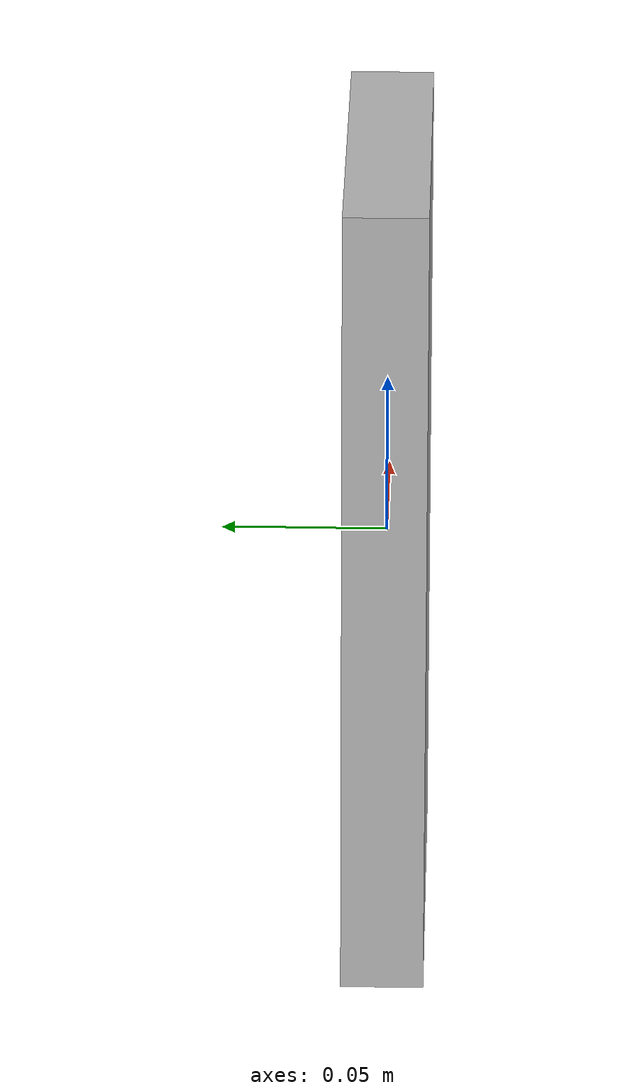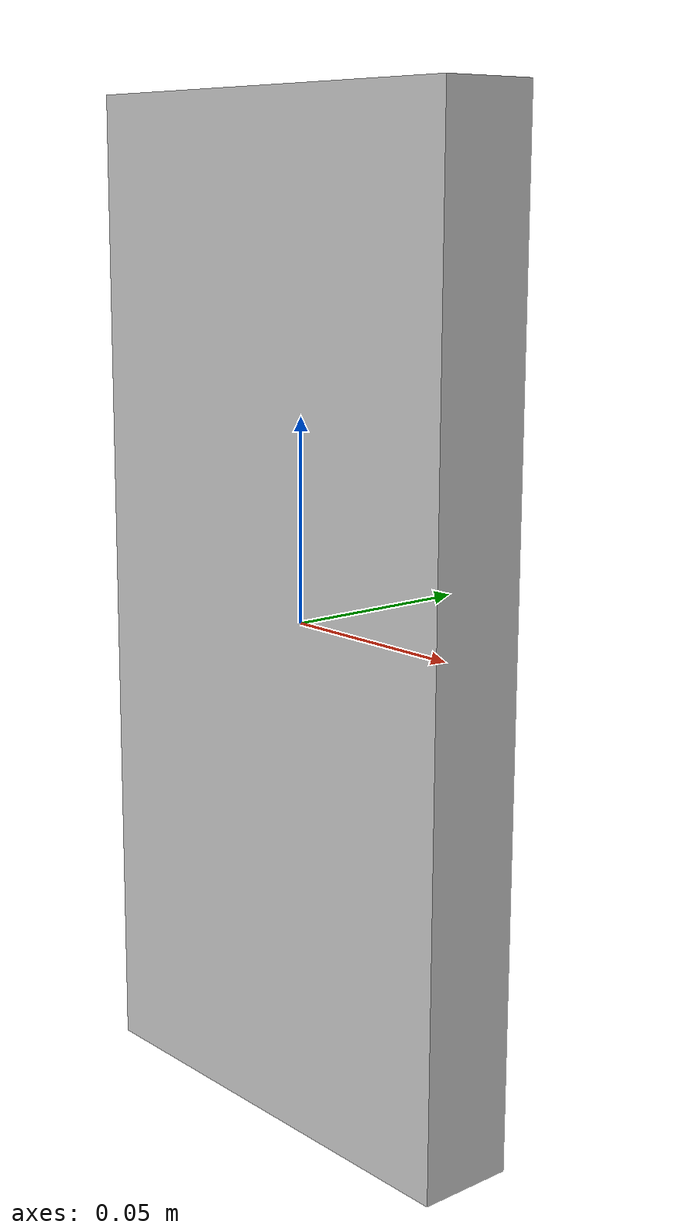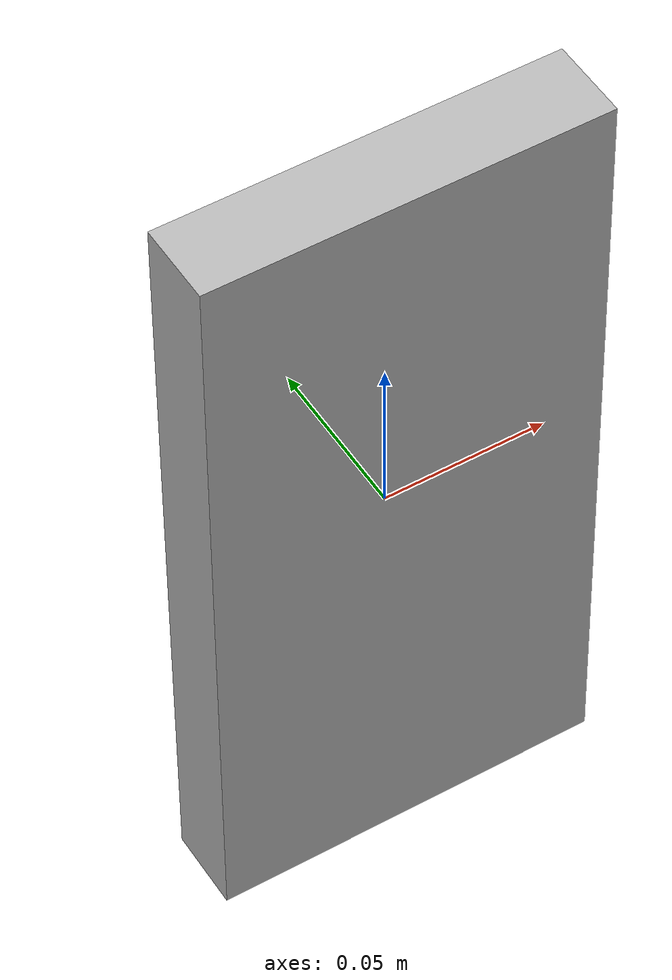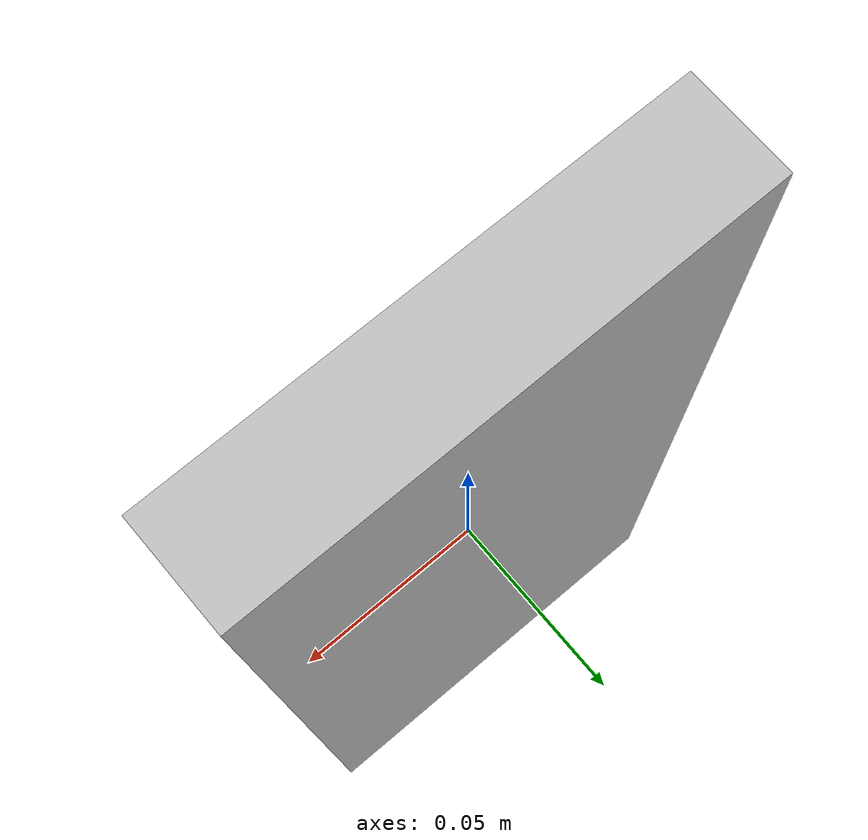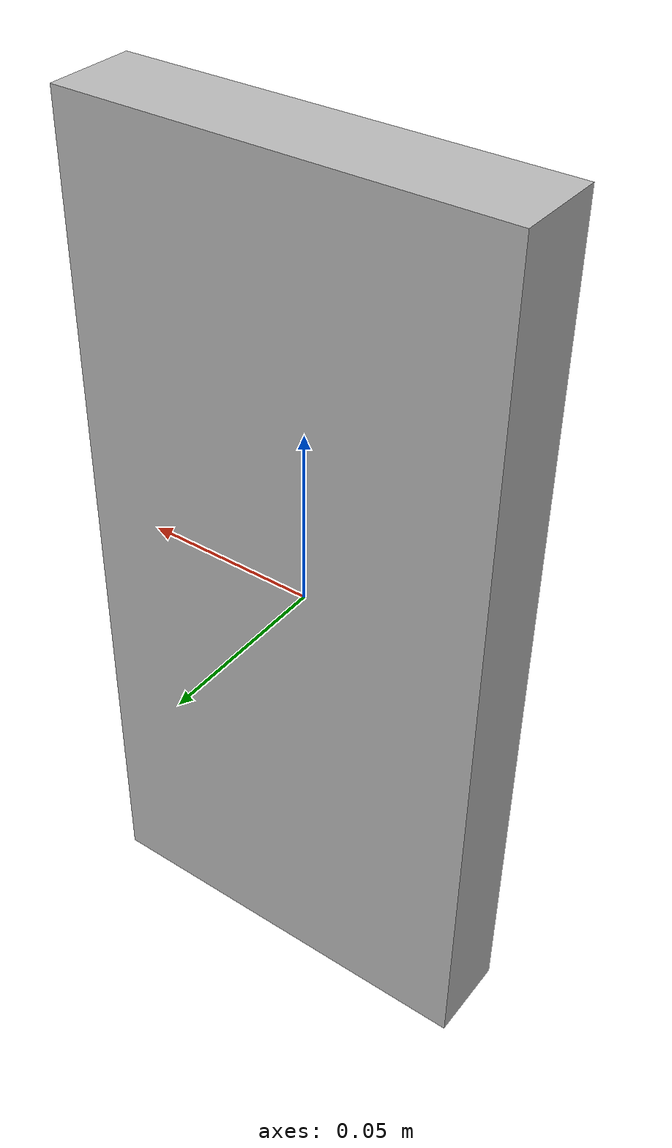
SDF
<?xml version="1.0" ?>
<sdf version="1.6">
  <model name="sign_stop">
    <static>true</static>
    <link name="box">
      <pose>0 0 0 0 0 0</pose>
      <collision name="collision">
        <geometry>
          <box>
            <size>0.12 0.025 0.25</size>
          </box>
        </geometry>
      </collision>
      <visual name="visual">
        <geometry>
          <box>
            <size>0.12 0.025 0.25</size>
          </box>
        </geometry>
        <material>
          <script>
            <uri>model://sign_stop/materials/scripts</uri>
            <uri>model://sign_stop/materials/textures</uri>
            <name>sign_stop</name>
          </script>
        </material>
      </visual>
    </link>
    <pose frame=''>0 -3e-06 -0 0 -0 0</pose>
  </model>
    <static>0</static>
    <allow_auto_disable>1</allow_auto_disable>
</sdf>
